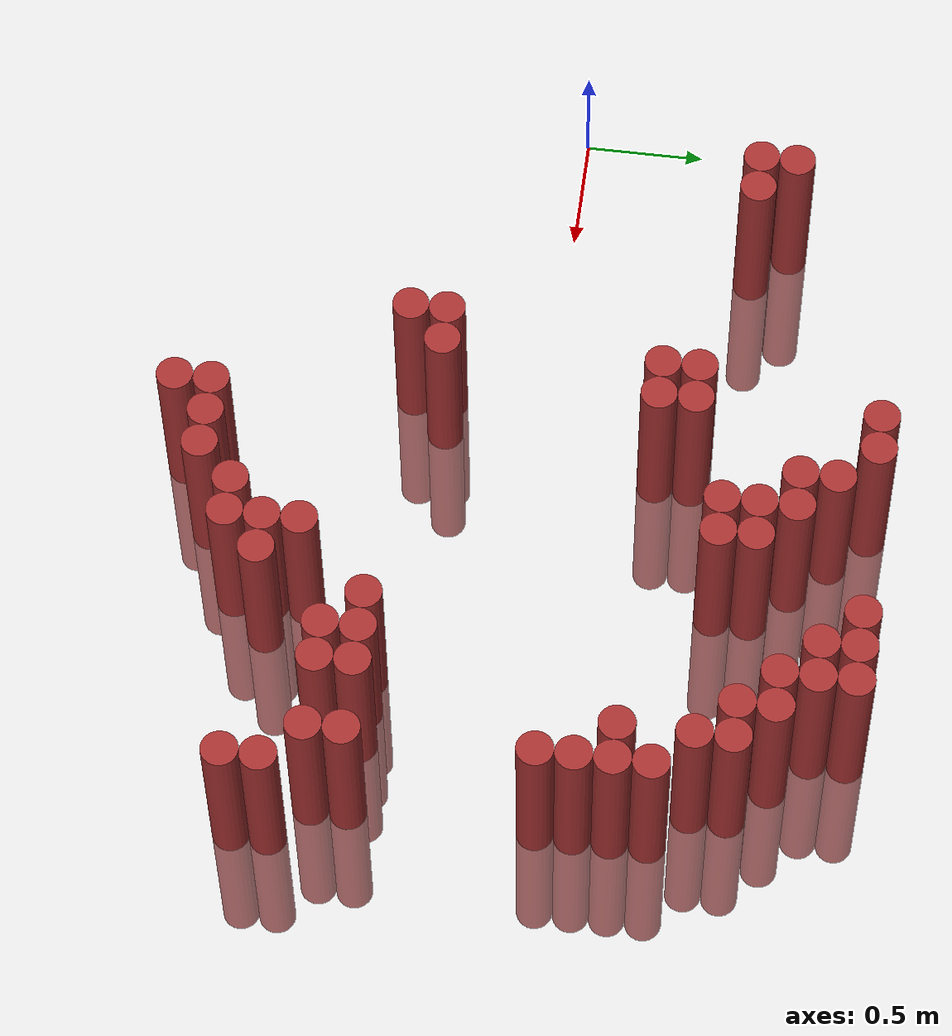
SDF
<sdf version="1.6">
 <world name="default">
  <model name="ground_plane">
   <static>1</static>
   <link name="link">
    <collision name="collision">
     <geometry><plane><normal>0 0 1</normal><size>100 100</size></plane></geometry>
     <surface><friction><ode><mu>100</mu><mu2>50</mu2></ode></friction></surface>
    </collision>
    <visual name="visual">
     <cast_shadows>0</cast_shadows>
     <geometry><plane><normal>0 0 1</normal><size>100 100</size></plane></geometry>
     <material>
      <script><uri>file://media/materials/scripts/gazebo.material</uri><name>Gazebo/Grey</name></script>
     </material>
    </visual>
   </link>
  </model>
  <model name="unit_cylinder_399">
   <static>1</static>
   <pose>0.475000 0.775000 0.000000 0.000000 0.000000 0.000000</pose>
   <link name="link">
    <inertial>
     <mass>1</mass>
     <inertia><ixx>0.145833</ixx><ixy>0</ixy><ixz>0</ixz><iyy>0.145833</iyy><iyz>0</iyz><izz>0.125</izz></inertia>
    </inertial>
    <collision name="collision">
     <geometry><cylinder><radius>0.075000</radius><length>1.5</length></cylinder></geometry>
    </collision>
    <visual name="visual">
     <geometry><cylinder><radius>0.075000</radius><length>1.5</length></cylinder></geometry>
     <material>
      <ambient>0.648000 0.192000 0.192000 1</ambient>
      <diffuse>0.648000 0.192000 0.192000 1</diffuse>
     </material>
     <material>
      <script><name>Gazebo/Grey</name><uri>file://media/materials/scripts/gazebo.material</uri></script>
     </material>
    </visual>
   </link>
  </model>
  <model name="unit_cylinder_400">
   <static>1</static>
   <pose>0.475000 0.925000 0.000000 0.000000 0.000000 0.000000</pose>
   <link name="link">
    <inertial>
     <mass>1</mass>
     <inertia><ixx>0.145833</ixx><ixy>0</ixy><ixz>0</ixz><iyy>0.145833</iyy><iyz>0</iyz><izz>0.125</izz></inertia>
    </inertial>
    <collision name="collision">
     <geometry><cylinder><radius>0.075000</radius><length>1.5</length></cylinder></geometry>
    </collision>
    <visual name="visual">
     <geometry><cylinder><radius>0.075000</radius><length>1.5</length></cylinder></geometry>
     <material>
      <ambient>0.648000 0.192000 0.192000 1</ambient>
      <diffuse>0.648000 0.192000 0.192000 1</diffuse>
     </material>
     <material>
      <script><name>Gazebo/Grey</name><uri>file://media/materials/scripts/gazebo.material</uri></script>
     </material>
    </visual>
   </link>
  </model>
  <model name="unit_cylinder_403">
   <static>1</static>
   <pose>0.625000 0.775000 0.000000 0.000000 0.000000 0.000000</pose>
   <link name="link">
    <inertial>
     <mass>1</mass>
     <inertia><ixx>0.145833</ixx><ixy>0</ixy><ixz>0</ixz><iyy>0.145833</iyy><iyz>0</iyz><izz>0.125</izz></inertia>
    </inertial>
    <collision name="collision">
     <geometry><cylinder><radius>0.075000</radius><length>1.5</length></cylinder></geometry>
    </collision>
    <visual name="visual">
     <geometry><cylinder><radius>0.075000</radius><length>1.5</length></cylinder></geometry>
     <material>
      <ambient>0.648000 0.192000 0.192000 1</ambient>
      <diffuse>0.648000 0.192000 0.192000 1</diffuse>
     </material>
     <material>
      <script><name>Gazebo/Grey</name><uri>file://media/materials/scripts/gazebo.material</uri></script>
     </material>
    </visual>
   </link>
  </model>
  <model name="unit_cylinder_437">
   <static>1</static>
   <pose>1.375000 -0.575000 0.000000 0.000000 0.000000 0.000000</pose>
   <link name="link">
    <inertial>
     <mass>1</mass>
     <inertia><ixx>0.145833</ixx><ixy>0</ixy><ixz>0</ixz><iyy>0.145833</iyy><iyz>0</iyz><izz>0.125</izz></inertia>
    </inertial>
    <collision name="collision">
     <geometry><cylinder><radius>0.075000</radius><length>1.5</length></cylinder></geometry>
    </collision>
    <visual name="visual">
     <geometry><cylinder><radius>0.075000</radius><length>1.5</length></cylinder></geometry>
     <material>
      <ambient>0.648000 0.192000 0.192000 1</ambient>
      <diffuse>0.648000 0.192000 0.192000 1</diffuse>
     </material>
     <material>
      <script><name>Gazebo/Grey</name><uri>file://media/materials/scripts/gazebo.material</uri></script>
     </material>
    </visual>
   </link>
  </model>
  <model name="unit_cylinder_438">
   <static>1</static>
   <pose>1.375000 -0.425000 0.000000 0.000000 0.000000 0.000000</pose>
   <link name="link">
    <inertial>
     <mass>1</mass>
     <inertia><ixx>0.145833</ixx><ixy>0</ixy><ixz>0</ixz><iyy>0.145833</iyy><iyz>0</iyz><izz>0.125</izz></inertia>
    </inertial>
    <collision name="collision">
     <geometry><cylinder><radius>0.075000</radius><length>1.5</length></cylinder></geometry>
    </collision>
    <visual name="visual">
     <geometry><cylinder><radius>0.075000</radius><length>1.5</length></cylinder></geometry>
     <material>
      <ambient>0.648000 0.192000 0.192000 1</ambient>
      <diffuse>0.648000 0.192000 0.192000 1</diffuse>
     </material>
     <material>
      <script><name>Gazebo/Grey</name><uri>file://media/materials/scripts/gazebo.material</uri></script>
     </material>
    </visual>
   </link>
  </model>
  <model name="unit_cylinder_447">
   <static>1</static>
   <pose>1.525000 -0.425000 0.000000 0.000000 0.000000 0.000000</pose>
   <link name="link">
    <inertial>
     <mass>1</mass>
     <inertia><ixx>0.145833</ixx><ixy>0</ixy><ixz>0</ixz><iyy>0.145833</iyy><iyz>0</iyz><izz>0.125</izz></inertia>
    </inertial>
    <collision name="collision">
     <geometry><cylinder><radius>0.075000</radius><length>1.5</length></cylinder></geometry>
    </collision>
    <visual name="visual">
     <geometry><cylinder><radius>0.075000</radius><length>1.5</length></cylinder></geometry>
     <material>
      <ambient>0.648000 0.192000 0.192000 1</ambient>
      <diffuse>0.648000 0.192000 0.192000 1</diffuse>
     </material>
     <material>
      <script><name>Gazebo/Grey</name><uri>file://media/materials/scripts/gazebo.material</uri></script>
     </material>
    </visual>
   </link>
  </model>
  <model name="unit_cylinder_448">
   <static>1</static>
   <pose>1.525000 0.475000 0.000000 0.000000 0.000000 0.000000</pose>
   <link name="link">
    <inertial>
     <mass>1</mass>
     <inertia><ixx>0.145833</ixx><ixy>0</ixy><ixz>0</ixz><iyy>0.145833</iyy><iyz>0</iyz><izz>0.125</izz></inertia>
    </inertial>
    <collision name="collision">
     <geometry><cylinder><radius>0.075000</radius><length>1.5</length></cylinder></geometry>
    </collision>
    <visual name="visual">
     <geometry><cylinder><radius>0.075000</radius><length>1.5</length></cylinder></geometry>
     <material>
      <ambient>0.648000 0.192000 0.192000 1</ambient>
      <diffuse>0.648000 0.192000 0.192000 1</diffuse>
     </material>
     <material>
      <script><name>Gazebo/Grey</name><uri>file://media/materials/scripts/gazebo.material</uri></script>
     </material>
    </visual>
   </link>
  </model>
  <model name="unit_cylinder_449">
   <static>1</static>
   <pose>1.525000 0.625000 0.000000 0.000000 0.000000 0.000000</pose>
   <link name="link">
    <inertial>
     <mass>1</mass>
     <inertia><ixx>0.145833</ixx><ixy>0</ixy><ixz>0</ixz><iyy>0.145833</iyy><iyz>0</iyz><izz>0.125</izz></inertia>
    </inertial>
    <collision name="collision">
     <geometry><cylinder><radius>0.075000</radius><length>1.5</length></cylinder></geometry>
    </collision>
    <visual name="visual">
     <geometry><cylinder><radius>0.075000</radius><length>1.5</length></cylinder></geometry>
     <material>
      <ambient>0.648000 0.192000 0.192000 1</ambient>
      <diffuse>0.648000 0.192000 0.192000 1</diffuse>
     </material>
     <material>
      <script><name>Gazebo/Grey</name><uri>file://media/materials/scripts/gazebo.material</uri></script>
     </material>
    </visual>
   </link>
  </model>
  <model name="unit_cylinder_457">
   <static>1</static>
   <pose>1.675000 0.475000 0.000000 0.000000 0.000000 0.000000</pose>
   <link name="link">
    <inertial>
     <mass>1</mass>
     <inertia><ixx>0.145833</ixx><ixy>0</ixy><ixz>0</ixz><iyy>0.145833</iyy><iyz>0</iyz><izz>0.125</izz></inertia>
    </inertial>
    <collision name="collision">
     <geometry><cylinder><radius>0.075000</radius><length>1.5</length></cylinder></geometry>
    </collision>
    <visual name="visual">
     <geometry><cylinder><radius>0.075000</radius><length>1.5</length></cylinder></geometry>
     <material>
      <ambient>0.648000 0.192000 0.192000 1</ambient>
      <diffuse>0.648000 0.192000 0.192000 1</diffuse>
     </material>
     <material>
      <script><name>Gazebo/Grey</name><uri>file://media/materials/scripts/gazebo.material</uri></script>
     </material>
    </visual>
   </link>
  </model>
  <model name="unit_cylinder_458">
   <static>1</static>
   <pose>1.675000 0.625000 0.000000 0.000000 0.000000 0.000000</pose>
   <link name="link">
    <inertial>
     <mass>1</mass>
     <inertia><ixx>0.145833</ixx><ixy>0</ixy><ixz>0</ixz><iyy>0.145833</iyy><iyz>0</iyz><izz>0.125</izz></inertia>
    </inertial>
    <collision name="collision">
     <geometry><cylinder><radius>0.075000</radius><length>1.5</length></cylinder></geometry>
    </collision>
    <visual name="visual">
     <geometry><cylinder><radius>0.075000</radius><length>1.5</length></cylinder></geometry>
     <material>
      <ambient>0.648000 0.192000 0.192000 1</ambient>
      <diffuse>0.648000 0.192000 0.192000 1</diffuse>
     </material>
     <material>
      <script><name>Gazebo/Grey</name><uri>file://media/materials/scripts/gazebo.material</uri></script>
     </material>
    </visual>
   </link>
  </model>
  <model name="unit_cylinder_459">
   <static>1</static>
   <pose>1.675000 1.375000 0.000000 0.000000 0.000000 0.000000</pose>
   <link name="link">
    <inertial>
     <mass>1</mass>
     <inertia><ixx>0.145833</ixx><ixy>0</ixy><ixz>0</ixz><iyy>0.145833</iyy><iyz>0</iyz><izz>0.125</izz></inertia>
    </inertial>
    <collision name="collision">
     <geometry><cylinder><radius>0.075000</radius><length>1.5</length></cylinder></geometry>
    </collision>
    <visual name="visual">
     <geometry><cylinder><radius>0.075000</radius><length>1.5</length></cylinder></geometry>
     <material>
      <ambient>0.648000 0.192000 0.192000 1</ambient>
      <diffuse>0.648000 0.192000 0.192000 1</diffuse>
     </material>
     <material>
      <script><name>Gazebo/Grey</name><uri>file://media/materials/scripts/gazebo.material</uri></script>
     </material>
    </visual>
   </link>
  </model>
  <model name="unit_cylinder_466">
   <static>1</static>
   <pose>1.825000 -1.475000 0.000000 0.000000 0.000000 0.000000</pose>
   <link name="link">
    <inertial>
     <mass>1</mass>
     <inertia><ixx>0.145833</ixx><ixy>0</ixy><ixz>0</ixz><iyy>0.145833</iyy><iyz>0</iyz><izz>0.125</izz></inertia>
    </inertial>
    <collision name="collision">
     <geometry><cylinder><radius>0.075000</radius><length>1.5</length></cylinder></geometry>
    </collision>
    <visual name="visual">
     <geometry><cylinder><radius>0.075000</radius><length>1.5</length></cylinder></geometry>
     <material>
      <ambient>0.648000 0.192000 0.192000 1</ambient>
      <diffuse>0.648000 0.192000 0.192000 1</diffuse>
     </material>
     <material>
      <script><name>Gazebo/Grey</name><uri>file://media/materials/scripts/gazebo.material</uri></script>
     </material>
    </visual>
   </link>
  </model>
  <model name="unit_cylinder_467">
   <static>1</static>
   <pose>1.825000 -1.325000 0.000000 0.000000 0.000000 0.000000</pose>
   <link name="link">
    <inertial>
     <mass>1</mass>
     <inertia><ixx>0.145833</ixx><ixy>0</ixy><ixz>0</ixz><iyy>0.145833</iyy><iyz>0</iyz><izz>0.125</izz></inertia>
    </inertial>
    <collision name="collision">
     <geometry><cylinder><radius>0.075000</radius><length>1.5</length></cylinder></geometry>
    </collision>
    <visual name="visual">
     <geometry><cylinder><radius>0.075000</radius><length>1.5</length></cylinder></geometry>
     <material>
      <ambient>0.648000 0.192000 0.192000 1</ambient>
      <diffuse>0.648000 0.192000 0.192000 1</diffuse>
     </material>
     <material>
      <script><name>Gazebo/Grey</name><uri>file://media/materials/scripts/gazebo.material</uri></script>
     </material>
    </visual>
   </link>
  </model>
  <model name="unit_cylinder_468">
   <static>1</static>
   <pose>1.825000 1.375000 0.000000 0.000000 0.000000 0.000000</pose>
   <link name="link">
    <inertial>
     <mass>1</mass>
     <inertia><ixx>0.145833</ixx><ixy>0</ixy><ixz>0</ixz><iyy>0.145833</iyy><iyz>0</iyz><izz>0.125</izz></inertia>
    </inertial>
    <collision name="collision">
     <geometry><cylinder><radius>0.075000</radius><length>1.5</length></cylinder></geometry>
    </collision>
    <visual name="visual">
     <geometry><cylinder><radius>0.075000</radius><length>1.5</length></cylinder></geometry>
     <material>
      <ambient>0.648000 0.192000 0.192000 1</ambient>
      <diffuse>0.648000 0.192000 0.192000 1</diffuse>
     </material>
     <material>
      <script><name>Gazebo/Grey</name><uri>file://media/materials/scripts/gazebo.material</uri></script>
     </material>
    </visual>
   </link>
  </model>
  <model name="unit_cylinder_471">
   <static>1</static>
   <pose>1.975000 -1.325000 0.000000 0.000000 0.000000 0.000000</pose>
   <link name="link">
    <inertial>
     <mass>1</mass>
     <inertia><ixx>0.145833</ixx><ixy>0</ixy><ixz>0</ixz><iyy>0.145833</iyy><iyz>0</iyz><izz>0.125</izz></inertia>
    </inertial>
    <collision name="collision">
     <geometry><cylinder><radius>0.075000</radius><length>1.5</length></cylinder></geometry>
    </collision>
    <visual name="visual">
     <geometry><cylinder><radius>0.075000</radius><length>1.5</length></cylinder></geometry>
     <material>
      <ambient>0.648000 0.192000 0.192000 1</ambient>
      <diffuse>0.648000 0.192000 0.192000 1</diffuse>
     </material>
     <material>
      <script><name>Gazebo/Grey</name><uri>file://media/materials/scripts/gazebo.material</uri></script>
     </material>
    </visual>
   </link>
  </model>
  <model name="unit_cylinder_472">
   <static>1</static>
   <pose>1.975000 1.075000 0.000000 0.000000 0.000000 0.000000</pose>
   <link name="link">
    <inertial>
     <mass>1</mass>
     <inertia><ixx>0.145833</ixx><ixy>0</ixy><ixz>0</ixz><iyy>0.145833</iyy><iyz>0</iyz><izz>0.125</izz></inertia>
    </inertial>
    <collision name="collision">
     <geometry><cylinder><radius>0.075000</radius><length>1.5</length></cylinder></geometry>
    </collision>
    <visual name="visual">
     <geometry><cylinder><radius>0.075000</radius><length>1.5</length></cylinder></geometry>
     <material>
      <ambient>0.648000 0.192000 0.192000 1</ambient>
      <diffuse>0.648000 0.192000 0.192000 1</diffuse>
     </material>
     <material>
      <script><name>Gazebo/Grey</name><uri>file://media/materials/scripts/gazebo.material</uri></script>
     </material>
    </visual>
   </link>
  </model>
  <model name="unit_cylinder_473">
   <static>1</static>
   <pose>1.975000 1.225000 0.000000 0.000000 0.000000 0.000000</pose>
   <link name="link">
    <inertial>
     <mass>1</mass>
     <inertia><ixx>0.145833</ixx><ixy>0</ixy><ixz>0</ixz><iyy>0.145833</iyy><iyz>0</iyz><izz>0.125</izz></inertia>
    </inertial>
    <collision name="collision">
     <geometry><cylinder><radius>0.075000</radius><length>1.5</length></cylinder></geometry>
    </collision>
    <visual name="visual">
     <geometry><cylinder><radius>0.075000</radius><length>1.5</length></cylinder></geometry>
     <material>
      <ambient>0.648000 0.192000 0.192000 1</ambient>
      <diffuse>0.648000 0.192000 0.192000 1</diffuse>
     </material>
     <material>
      <script><name>Gazebo/Grey</name><uri>file://media/materials/scripts/gazebo.material</uri></script>
     </material>
    </visual>
   </link>
  </model>
  <model name="unit_cylinder_477">
   <static>1</static>
   <pose>2.125000 -1.325000 0.000000 0.000000 0.000000 0.000000</pose>
   <link name="link">
    <inertial>
     <mass>1</mass>
     <inertia><ixx>0.145833</ixx><ixy>0</ixy><ixz>0</ixz><iyy>0.145833</iyy><iyz>0</iyz><izz>0.125</izz></inertia>
    </inertial>
    <collision name="collision">
     <geometry><cylinder><radius>0.075000</radius><length>1.5</length></cylinder></geometry>
    </collision>
    <visual name="visual">
     <geometry><cylinder><radius>0.075000</radius><length>1.5</length></cylinder></geometry>
     <material>
      <ambient>0.648000 0.192000 0.192000 1</ambient>
      <diffuse>0.648000 0.192000 0.192000 1</diffuse>
     </material>
     <material>
      <script><name>Gazebo/Grey</name><uri>file://media/materials/scripts/gazebo.material</uri></script>
     </material>
    </visual>
   </link>
  </model>
  <model name="unit_cylinder_478">
   <static>1</static>
   <pose>2.125000 0.775000 0.000000 0.000000 0.000000 0.000000</pose>
   <link name="link">
    <inertial>
     <mass>1</mass>
     <inertia><ixx>0.145833</ixx><ixy>0</ixy><ixz>0</ixz><iyy>0.145833</iyy><iyz>0</iyz><izz>0.125</izz></inertia>
    </inertial>
    <collision name="collision">
     <geometry><cylinder><radius>0.075000</radius><length>1.5</length></cylinder></geometry>
    </collision>
    <visual name="visual">
     <geometry><cylinder><radius>0.075000</radius><length>1.5</length></cylinder></geometry>
     <material>
      <ambient>0.648000 0.192000 0.192000 1</ambient>
      <diffuse>0.648000 0.192000 0.192000 1</diffuse>
     </material>
     <material>
      <script><name>Gazebo/Grey</name><uri>file://media/materials/scripts/gazebo.material</uri></script>
     </material>
    </visual>
   </link>
  </model>
  <model name="unit_cylinder_479">
   <static>1</static>
   <pose>2.125000 0.925000 0.000000 0.000000 0.000000 0.000000</pose>
   <link name="link">
    <inertial>
     <mass>1</mass>
     <inertia><ixx>0.145833</ixx><ixy>0</ixy><ixz>0</ixz><iyy>0.145833</iyy><iyz>0</iyz><izz>0.125</izz></inertia>
    </inertial>
    <collision name="collision">
     <geometry><cylinder><radius>0.075000</radius><length>1.5</length></cylinder></geometry>
    </collision>
    <visual name="visual">
     <geometry><cylinder><radius>0.075000</radius><length>1.5</length></cylinder></geometry>
     <material>
      <ambient>0.648000 0.192000 0.192000 1</ambient>
      <diffuse>0.648000 0.192000 0.192000 1</diffuse>
     </material>
     <material>
      <script><name>Gazebo/Grey</name><uri>file://media/materials/scripts/gazebo.material</uri></script>
     </material>
    </visual>
   </link>
  </model>
  <model name="unit_cylinder_480">
   <static>1</static>
   <pose>2.125000 1.075000 0.000000 0.000000 0.000000 0.000000</pose>
   <link name="link">
    <inertial>
     <mass>1</mass>
     <inertia><ixx>0.145833</ixx><ixy>0</ixy><ixz>0</ixz><iyy>0.145833</iyy><iyz>0</iyz><izz>0.125</izz></inertia>
    </inertial>
    <collision name="collision">
     <geometry><cylinder><radius>0.075000</radius><length>1.5</length></cylinder></geometry>
    </collision>
    <visual name="visual">
     <geometry><cylinder><radius>0.075000</radius><length>1.5</length></cylinder></geometry>
     <material>
      <ambient>0.648000 0.192000 0.192000 1</ambient>
      <diffuse>0.648000 0.192000 0.192000 1</diffuse>
     </material>
     <material>
      <script><name>Gazebo/Grey</name><uri>file://media/materials/scripts/gazebo.material</uri></script>
     </material>
    </visual>
   </link>
  </model>
  <model name="unit_cylinder_487">
   <static>1</static>
   <pose>2.275000 -1.175000 0.000000 0.000000 0.000000 0.000000</pose>
   <link name="link">
    <inertial>
     <mass>1</mass>
     <inertia><ixx>0.145833</ixx><ixy>0</ixy><ixz>0</ixz><iyy>0.145833</iyy><iyz>0</iyz><izz>0.125</izz></inertia>
    </inertial>
    <collision name="collision">
     <geometry><cylinder><radius>0.075000</radius><length>1.5</length></cylinder></geometry>
    </collision>
    <visual name="visual">
     <geometry><cylinder><radius>0.075000</radius><length>1.5</length></cylinder></geometry>
     <material>
      <ambient>0.648000 0.192000 0.192000 1</ambient>
      <diffuse>0.648000 0.192000 0.192000 1</diffuse>
     </material>
     <material>
      <script><name>Gazebo/Grey</name><uri>file://media/materials/scripts/gazebo.material</uri></script>
     </material>
    </visual>
   </link>
  </model>
  <model name="unit_cylinder_488">
   <static>1</static>
   <pose>2.275000 0.775000 0.000000 0.000000 0.000000 0.000000</pose>
   <link name="link">
    <inertial>
     <mass>1</mass>
     <inertia><ixx>0.145833</ixx><ixy>0</ixy><ixz>0</ixz><iyy>0.145833</iyy><iyz>0</iyz><izz>0.125</izz></inertia>
    </inertial>
    <collision name="collision">
     <geometry><cylinder><radius>0.075000</radius><length>1.5</length></cylinder></geometry>
    </collision>
    <visual name="visual">
     <geometry><cylinder><radius>0.075000</radius><length>1.5</length></cylinder></geometry>
     <material>
      <ambient>0.648000 0.192000 0.192000 1</ambient>
      <diffuse>0.648000 0.192000 0.192000 1</diffuse>
     </material>
     <material>
      <script><name>Gazebo/Grey</name><uri>file://media/materials/scripts/gazebo.material</uri></script>
     </material>
    </visual>
   </link>
  </model>
  <model name="unit_cylinder_489">
   <static>1</static>
   <pose>2.275000 0.925000 0.000000 0.000000 0.000000 0.000000</pose>
   <link name="link">
    <inertial>
     <mass>1</mass>
     <inertia><ixx>0.145833</ixx><ixy>0</ixy><ixz>0</ixz><iyy>0.145833</iyy><iyz>0</iyz><izz>0.125</izz></inertia>
    </inertial>
    <collision name="collision">
     <geometry><cylinder><radius>0.075000</radius><length>1.5</length></cylinder></geometry>
    </collision>
    <visual name="visual">
     <geometry><cylinder><radius>0.075000</radius><length>1.5</length></cylinder></geometry>
     <material>
      <ambient>0.648000 0.192000 0.192000 1</ambient>
      <diffuse>0.648000 0.192000 0.192000 1</diffuse>
     </material>
     <material>
      <script><name>Gazebo/Grey</name><uri>file://media/materials/scripts/gazebo.material</uri></script>
     </material>
    </visual>
   </link>
  </model>
  <model name="unit_cylinder_493">
   <static>1</static>
   <pose>2.425000 -1.175000 0.000000 0.000000 0.000000 0.000000</pose>
   <link name="link">
    <inertial>
     <mass>1</mass>
     <inertia><ixx>0.145833</ixx><ixy>0</ixy><ixz>0</ixz><iyy>0.145833</iyy><iyz>0</iyz><izz>0.125</izz></inertia>
    </inertial>
    <collision name="collision">
     <geometry><cylinder><radius>0.075000</radius><length>1.5</length></cylinder></geometry>
    </collision>
    <visual name="visual">
     <geometry><cylinder><radius>0.075000</radius><length>1.5</length></cylinder></geometry>
     <material>
      <ambient>0.648000 0.192000 0.192000 1</ambient>
      <diffuse>0.648000 0.192000 0.192000 1</diffuse>
     </material>
     <material>
      <script><name>Gazebo/Grey</name><uri>file://media/materials/scripts/gazebo.material</uri></script>
     </material>
    </visual>
   </link>
  </model>
  <model name="unit_cylinder_494">
   <static>1</static>
   <pose>2.425000 -1.025000 0.000000 0.000000 0.000000 0.000000</pose>
   <link name="link">
    <inertial>
     <mass>1</mass>
     <inertia><ixx>0.145833</ixx><ixy>0</ixy><ixz>0</ixz><iyy>0.145833</iyy><iyz>0</iyz><izz>0.125</izz></inertia>
    </inertial>
    <collision name="collision">
     <geometry><cylinder><radius>0.075000</radius><length>1.5</length></cylinder></geometry>
    </collision>
    <visual name="visual">
     <geometry><cylinder><radius>0.075000</radius><length>1.5</length></cylinder></geometry>
     <material>
      <ambient>0.648000 0.192000 0.192000 1</ambient>
      <diffuse>0.648000 0.192000 0.192000 1</diffuse>
     </material>
     <material>
      <script><name>Gazebo/Grey</name><uri>file://media/materials/scripts/gazebo.material</uri></script>
     </material>
    </visual>
   </link>
  </model>
  <model name="unit_cylinder_495">
   <static>1</static>
   <pose>2.425000 -0.875000 0.000000 0.000000 0.000000 0.000000</pose>
   <link name="link">
    <inertial>
     <mass>1</mass>
     <inertia><ixx>0.145833</ixx><ixy>0</ixy><ixz>0</ixz><iyy>0.145833</iyy><iyz>0</iyz><izz>0.125</izz></inertia>
    </inertial>
    <collision name="collision">
     <geometry><cylinder><radius>0.075000</radius><length>1.5</length></cylinder></geometry>
    </collision>
    <visual name="visual">
     <geometry><cylinder><radius>0.075000</radius><length>1.5</length></cylinder></geometry>
     <material>
      <ambient>0.648000 0.192000 0.192000 1</ambient>
      <diffuse>0.648000 0.192000 0.192000 1</diffuse>
     </material>
     <material>
      <script><name>Gazebo/Grey</name><uri>file://media/materials/scripts/gazebo.material</uri></script>
     </material>
    </visual>
   </link>
  </model>
  <model name="unit_cylinder_496">
   <static>1</static>
   <pose>2.575000 -1.025000 0.000000 0.000000 0.000000 0.000000</pose>
   <link name="link">
    <inertial>
     <mass>1</mass>
     <inertia><ixx>0.145833</ixx><ixy>0</ixy><ixz>0</ixz><iyy>0.145833</iyy><iyz>0</iyz><izz>0.125</izz></inertia>
    </inertial>
    <collision name="collision">
     <geometry><cylinder><radius>0.075000</radius><length>1.5</length></cylinder></geometry>
    </collision>
    <visual name="visual">
     <geometry><cylinder><radius>0.075000</radius><length>1.5</length></cylinder></geometry>
     <material>
      <ambient>0.648000 0.192000 0.192000 1</ambient>
      <diffuse>0.648000 0.192000 0.192000 1</diffuse>
     </material>
     <material>
      <script><name>Gazebo/Grey</name><uri>file://media/materials/scripts/gazebo.material</uri></script>
     </material>
    </visual>
   </link>
  </model>
  <model name="unit_cylinder_497">
   <static>1</static>
   <pose>2.575000 1.375000 0.000000 0.000000 0.000000 0.000000</pose>
   <link name="link">
    <inertial>
     <mass>1</mass>
     <inertia><ixx>0.145833</ixx><ixy>0</ixy><ixz>0</ixz><iyy>0.145833</iyy><iyz>0</iyz><izz>0.125</izz></inertia>
    </inertial>
    <collision name="collision">
     <geometry><cylinder><radius>0.075000</radius><length>1.5</length></cylinder></geometry>
    </collision>
    <visual name="visual">
     <geometry><cylinder><radius>0.075000</radius><length>1.5</length></cylinder></geometry>
     <material>
      <ambient>0.648000 0.192000 0.192000 1</ambient>
      <diffuse>0.648000 0.192000 0.192000 1</diffuse>
     </material>
     <material>
      <script><name>Gazebo/Grey</name><uri>file://media/materials/scripts/gazebo.material</uri></script>
     </material>
    </visual>
   </link>
  </model>
  <model name="unit_cylinder_502">
   <static>1</static>
   <pose>2.725000 -0.575000 0.000000 0.000000 0.000000 0.000000</pose>
   <link name="link">
    <inertial>
     <mass>1</mass>
     <inertia><ixx>0.145833</ixx><ixy>0</ixy><ixz>0</ixz><iyy>0.145833</iyy><iyz>0</iyz><izz>0.125</izz></inertia>
    </inertial>
    <collision name="collision">
     <geometry><cylinder><radius>0.075000</radius><length>1.5</length></cylinder></geometry>
    </collision>
    <visual name="visual">
     <geometry><cylinder><radius>0.075000</radius><length>1.5</length></cylinder></geometry>
     <material>
      <ambient>0.648000 0.192000 0.192000 1</ambient>
      <diffuse>0.648000 0.192000 0.192000 1</diffuse>
     </material>
     <material>
      <script><name>Gazebo/Grey</name><uri>file://media/materials/scripts/gazebo.material</uri></script>
     </material>
    </visual>
   </link>
  </model>
  <model name="unit_cylinder_503">
   <static>1</static>
   <pose>2.725000 1.225000 0.000000 0.000000 0.000000 0.000000</pose>
   <link name="link">
    <inertial>
     <mass>1</mass>
     <inertia><ixx>0.145833</ixx><ixy>0</ixy><ixz>0</ixz><iyy>0.145833</iyy><iyz>0</iyz><izz>0.125</izz></inertia>
    </inertial>
    <collision name="collision">
     <geometry><cylinder><radius>0.075000</radius><length>1.5</length></cylinder></geometry>
    </collision>
    <visual name="visual">
     <geometry><cylinder><radius>0.075000</radius><length>1.5</length></cylinder></geometry>
     <material>
      <ambient>0.648000 0.192000 0.192000 1</ambient>
      <diffuse>0.648000 0.192000 0.192000 1</diffuse>
     </material>
     <material>
      <script><name>Gazebo/Grey</name><uri>file://media/materials/scripts/gazebo.material</uri></script>
     </material>
    </visual>
   </link>
  </model>
  <model name="unit_cylinder_504">
   <static>1</static>
   <pose>2.725000 1.375000 0.000000 0.000000 0.000000 0.000000</pose>
   <link name="link">
    <inertial>
     <mass>1</mass>
     <inertia><ixx>0.145833</ixx><ixy>0</ixy><ixz>0</ixz><iyy>0.145833</iyy><iyz>0</iyz><izz>0.125</izz></inertia>
    </inertial>
    <collision name="collision">
     <geometry><cylinder><radius>0.075000</radius><length>1.5</length></cylinder></geometry>
    </collision>
    <visual name="visual">
     <geometry><cylinder><radius>0.075000</radius><length>1.5</length></cylinder></geometry>
     <material>
      <ambient>0.648000 0.192000 0.192000 1</ambient>
      <diffuse>0.648000 0.192000 0.192000 1</diffuse>
     </material>
     <material>
      <script><name>Gazebo/Grey</name><uri>file://media/materials/scripts/gazebo.material</uri></script>
     </material>
    </visual>
   </link>
  </model>
  <model name="unit_cylinder_509">
   <static>1</static>
   <pose>2.875000 -0.725000 0.000000 0.000000 0.000000 0.000000</pose>
   <link name="link">
    <inertial>
     <mass>1</mass>
     <inertia><ixx>0.145833</ixx><ixy>0</ixy><ixz>0</ixz><iyy>0.145833</iyy><iyz>0</iyz><izz>0.125</izz></inertia>
    </inertial>
    <collision name="collision">
     <geometry><cylinder><radius>0.075000</radius><length>1.5</length></cylinder></geometry>
    </collision>
    <visual name="visual">
     <geometry><cylinder><radius>0.075000</radius><length>1.5</length></cylinder></geometry>
     <material>
      <ambient>0.648000 0.192000 0.192000 1</ambient>
      <diffuse>0.648000 0.192000 0.192000 1</diffuse>
     </material>
     <material>
      <script><name>Gazebo/Grey</name><uri>file://media/materials/scripts/gazebo.material</uri></script>
     </material>
    </visual>
   </link>
  </model>
  <model name="unit_cylinder_510">
   <static>1</static>
   <pose>2.875000 -0.575000 0.000000 0.000000 0.000000 0.000000</pose>
   <link name="link">
    <inertial>
     <mass>1</mass>
     <inertia><ixx>0.145833</ixx><ixy>0</ixy><ixz>0</ixz><iyy>0.145833</iyy><iyz>0</iyz><izz>0.125</izz></inertia>
    </inertial>
    <collision name="collision">
     <geometry><cylinder><radius>0.075000</radius><length>1.5</length></cylinder></geometry>
    </collision>
    <visual name="visual">
     <geometry><cylinder><radius>0.075000</radius><length>1.5</length></cylinder></geometry>
     <material>
      <ambient>0.648000 0.192000 0.192000 1</ambient>
      <diffuse>0.648000 0.192000 0.192000 1</diffuse>
     </material>
     <material>
      <script><name>Gazebo/Grey</name><uri>file://media/materials/scripts/gazebo.material</uri></script>
     </material>
    </visual>
   </link>
  </model>
  <model name="unit_cylinder_511">
   <static>1</static>
   <pose>2.875000 1.075000 0.000000 0.000000 0.000000 0.000000</pose>
   <link name="link">
    <inertial>
     <mass>1</mass>
     <inertia><ixx>0.145833</ixx><ixy>0</ixy><ixz>0</ixz><iyy>0.145833</iyy><iyz>0</iyz><izz>0.125</izz></inertia>
    </inertial>
    <collision name="collision">
     <geometry><cylinder><radius>0.075000</radius><length>1.5</length></cylinder></geometry>
    </collision>
    <visual name="visual">
     <geometry><cylinder><radius>0.075000</radius><length>1.5</length></cylinder></geometry>
     <material>
      <ambient>0.648000 0.192000 0.192000 1</ambient>
      <diffuse>0.648000 0.192000 0.192000 1</diffuse>
     </material>
     <material>
      <script><name>Gazebo/Grey</name><uri>file://media/materials/scripts/gazebo.material</uri></script>
     </material>
    </visual>
   </link>
  </model>
  <model name="unit_cylinder_512">
   <static>1</static>
   <pose>2.875000 1.225000 0.000000 0.000000 0.000000 0.000000</pose>
   <link name="link">
    <inertial>
     <mass>1</mass>
     <inertia><ixx>0.145833</ixx><ixy>0</ixy><ixz>0</ixz><iyy>0.145833</iyy><iyz>0</iyz><izz>0.125</izz></inertia>
    </inertial>
    <collision name="collision">
     <geometry><cylinder><radius>0.075000</radius><length>1.5</length></cylinder></geometry>
    </collision>
    <visual name="visual">
     <geometry><cylinder><radius>0.075000</radius><length>1.5</length></cylinder></geometry>
     <material>
      <ambient>0.648000 0.192000 0.192000 1</ambient>
      <diffuse>0.648000 0.192000 0.192000 1</diffuse>
     </material>
     <material>
      <script><name>Gazebo/Grey</name><uri>file://media/materials/scripts/gazebo.material</uri></script>
     </material>
    </visual>
   </link>
  </model>
  <model name="unit_cylinder_513">
   <static>1</static>
   <pose>2.875000 1.375000 0.000000 0.000000 0.000000 0.000000</pose>
   <link name="link">
    <inertial>
     <mass>1</mass>
     <inertia><ixx>0.145833</ixx><ixy>0</ixy><ixz>0</ixz><iyy>0.145833</iyy><iyz>0</iyz><izz>0.125</izz></inertia>
    </inertial>
    <collision name="collision">
     <geometry><cylinder><radius>0.075000</radius><length>1.5</length></cylinder></geometry>
    </collision>
    <visual name="visual">
     <geometry><cylinder><radius>0.075000</radius><length>1.5</length></cylinder></geometry>
     <material>
      <ambient>0.648000 0.192000 0.192000 1</ambient>
      <diffuse>0.648000 0.192000 0.192000 1</diffuse>
     </material>
     <material>
      <script><name>Gazebo/Grey</name><uri>file://media/materials/scripts/gazebo.material</uri></script>
     </material>
    </visual>
   </link>
  </model>
  <model name="unit_cylinder_520">
   <static>1</static>
   <pose>3.025000 -0.725000 0.000000 0.000000 0.000000 0.000000</pose>
   <link name="link">
    <inertial>
     <mass>1</mass>
     <inertia><ixx>0.145833</ixx><ixy>0</ixy><ixz>0</ixz><iyy>0.145833</iyy><iyz>0</iyz><izz>0.125</izz></inertia>
    </inertial>
    <collision name="collision">
     <geometry><cylinder><radius>0.075000</radius><length>1.5</length></cylinder></geometry>
    </collision>
    <visual name="visual">
     <geometry><cylinder><radius>0.075000</radius><length>1.5</length></cylinder></geometry>
     <material>
      <ambient>0.648000 0.192000 0.192000 1</ambient>
      <diffuse>0.648000 0.192000 0.192000 1</diffuse>
     </material>
     <material>
      <script><name>Gazebo/Grey</name><uri>file://media/materials/scripts/gazebo.material</uri></script>
     </material>
    </visual>
   </link>
  </model>
  <model name="unit_cylinder_521">
   <static>1</static>
   <pose>3.025000 -0.575000 0.000000 0.000000 0.000000 0.000000</pose>
   <link name="link">
    <inertial>
     <mass>1</mass>
     <inertia><ixx>0.145833</ixx><ixy>0</ixy><ixz>0</ixz><iyy>0.145833</iyy><iyz>0</iyz><izz>0.125</izz></inertia>
    </inertial>
    <collision name="collision">
     <geometry><cylinder><radius>0.075000</radius><length>1.5</length></cylinder></geometry>
    </collision>
    <visual name="visual">
     <geometry><cylinder><radius>0.075000</radius><length>1.5</length></cylinder></geometry>
     <material>
      <ambient>0.648000 0.192000 0.192000 1</ambient>
      <diffuse>0.648000 0.192000 0.192000 1</diffuse>
     </material>
     <material>
      <script><name>Gazebo/Grey</name><uri>file://media/materials/scripts/gazebo.material</uri></script>
     </material>
    </visual>
   </link>
  </model>
  <model name="unit_cylinder_522">
   <static>1</static>
   <pose>3.025000 0.925000 0.000000 0.000000 0.000000 0.000000</pose>
   <link name="link">
    <inertial>
     <mass>1</mass>
     <inertia><ixx>0.145833</ixx><ixy>0</ixy><ixz>0</ixz><iyy>0.145833</iyy><iyz>0</iyz><izz>0.125</izz></inertia>
    </inertial>
    <collision name="collision">
     <geometry><cylinder><radius>0.075000</radius><length>1.5</length></cylinder></geometry>
    </collision>
    <visual name="visual">
     <geometry><cylinder><radius>0.075000</radius><length>1.5</length></cylinder></geometry>
     <material>
      <ambient>0.648000 0.192000 0.192000 1</ambient>
      <diffuse>0.648000 0.192000 0.192000 1</diffuse>
     </material>
     <material>
      <script><name>Gazebo/Grey</name><uri>file://media/materials/scripts/gazebo.material</uri></script>
     </material>
    </visual>
   </link>
  </model>
  <model name="unit_cylinder_523">
   <static>1</static>
   <pose>3.025000 1.075000 0.000000 0.000000 0.000000 0.000000</pose>
   <link name="link">
    <inertial>
     <mass>1</mass>
     <inertia><ixx>0.145833</ixx><ixy>0</ixy><ixz>0</ixz><iyy>0.145833</iyy><iyz>0</iyz><izz>0.125</izz></inertia>
    </inertial>
    <collision name="collision">
     <geometry><cylinder><radius>0.075000</radius><length>1.5</length></cylinder></geometry>
    </collision>
    <visual name="visual">
     <geometry><cylinder><radius>0.075000</radius><length>1.5</length></cylinder></geometry>
     <material>
      <ambient>0.648000 0.192000 0.192000 1</ambient>
      <diffuse>0.648000 0.192000 0.192000 1</diffuse>
     </material>
     <material>
      <script><name>Gazebo/Grey</name><uri>file://media/materials/scripts/gazebo.material</uri></script>
     </material>
    </visual>
   </link>
  </model>
  <model name="unit_cylinder_529">
   <static>1</static>
   <pose>3.175000 0.475000 0.000000 0.000000 0.000000 0.000000</pose>
   <link name="link">
    <inertial>
     <mass>1</mass>
     <inertia><ixx>0.145833</ixx><ixy>0</ixy><ixz>0</ixz><iyy>0.145833</iyy><iyz>0</iyz><izz>0.125</izz></inertia>
    </inertial>
    <collision name="collision">
     <geometry><cylinder><radius>0.075000</radius><length>1.5</length></cylinder></geometry>
    </collision>
    <visual name="visual">
     <geometry><cylinder><radius>0.075000</radius><length>1.5</length></cylinder></geometry>
     <material>
      <ambient>0.648000 0.192000 0.192000 1</ambient>
      <diffuse>0.648000 0.192000 0.192000 1</diffuse>
     </material>
     <material>
      <script><name>Gazebo/Grey</name><uri>file://media/materials/scripts/gazebo.material</uri></script>
     </material>
    </visual>
   </link>
  </model>
  <model name="unit_cylinder_530">
   <static>1</static>
   <pose>3.175000 0.775000 0.000000 0.000000 0.000000 0.000000</pose>
   <link name="link">
    <inertial>
     <mass>1</mass>
     <inertia><ixx>0.145833</ixx><ixy>0</ixy><ixz>0</ixz><iyy>0.145833</iyy><iyz>0</iyz><izz>0.125</izz></inertia>
    </inertial>
    <collision name="collision">
     <geometry><cylinder><radius>0.075000</radius><length>1.5</length></cylinder></geometry>
    </collision>
    <visual name="visual">
     <geometry><cylinder><radius>0.075000</radius><length>1.5</length></cylinder></geometry>
     <material>
      <ambient>0.648000 0.192000 0.192000 1</ambient>
      <diffuse>0.648000 0.192000 0.192000 1</diffuse>
     </material>
     <material>
      <script><name>Gazebo/Grey</name><uri>file://media/materials/scripts/gazebo.material</uri></script>
     </material>
    </visual>
   </link>
  </model>
  <model name="unit_cylinder_531">
   <static>1</static>
   <pose>3.175000 0.925000 0.000000 0.000000 0.000000 0.000000</pose>
   <link name="link">
    <inertial>
     <mass>1</mass>
     <inertia><ixx>0.145833</ixx><ixy>0</ixy><ixz>0</ixz><iyy>0.145833</iyy><iyz>0</iyz><izz>0.125</izz></inertia>
    </inertial>
    <collision name="collision">
     <geometry><cylinder><radius>0.075000</radius><length>1.5</length></cylinder></geometry>
    </collision>
    <visual name="visual">
     <geometry><cylinder><radius>0.075000</radius><length>1.5</length></cylinder></geometry>
     <material>
      <ambient>0.648000 0.192000 0.192000 1</ambient>
      <diffuse>0.648000 0.192000 0.192000 1</diffuse>
     </material>
     <material>
      <script><name>Gazebo/Grey</name><uri>file://media/materials/scripts/gazebo.material</uri></script>
     </material>
    </visual>
   </link>
  </model>
  <model name="unit_cylinder_534">
   <static>1</static>
   <pose>3.325000 -0.725000 0.000000 0.000000 0.000000 0.000000</pose>
   <link name="link">
    <inertial>
     <mass>1</mass>
     <inertia><ixx>0.145833</ixx><ixy>0</ixy><ixz>0</ixz><iyy>0.145833</iyy><iyz>0</iyz><izz>0.125</izz></inertia>
    </inertial>
    <collision name="collision">
     <geometry><cylinder><radius>0.075000</radius><length>1.5</length></cylinder></geometry>
    </collision>
    <visual name="visual">
     <geometry><cylinder><radius>0.075000</radius><length>1.5</length></cylinder></geometry>
     <material>
      <ambient>0.648000 0.192000 0.192000 1</ambient>
      <diffuse>0.648000 0.192000 0.192000 1</diffuse>
     </material>
     <material>
      <script><name>Gazebo/Grey</name><uri>file://media/materials/scripts/gazebo.material</uri></script>
     </material>
    </visual>
   </link>
  </model>
  <model name="unit_cylinder_535">
   <static>1</static>
   <pose>3.325000 -0.575000 0.000000 0.000000 0.000000 0.000000</pose>
   <link name="link">
    <inertial>
     <mass>1</mass>
     <inertia><ixx>0.145833</ixx><ixy>0</ixy><ixz>0</ixz><iyy>0.145833</iyy><iyz>0</iyz><izz>0.125</izz></inertia>
    </inertial>
    <collision name="collision">
     <geometry><cylinder><radius>0.075000</radius><length>1.5</length></cylinder></geometry>
    </collision>
    <visual name="visual">
     <geometry><cylinder><radius>0.075000</radius><length>1.5</length></cylinder></geometry>
     <material>
      <ambient>0.648000 0.192000 0.192000 1</ambient>
      <diffuse>0.648000 0.192000 0.192000 1</diffuse>
     </material>
     <material>
      <script><name>Gazebo/Grey</name><uri>file://media/materials/scripts/gazebo.material</uri></script>
     </material>
    </visual>
   </link>
  </model>
  <model name="unit_cylinder_536">
   <static>1</static>
   <pose>3.325000 0.175000 0.000000 0.000000 0.000000 0.000000</pose>
   <link name="link">
    <inertial>
     <mass>1</mass>
     <inertia><ixx>0.145833</ixx><ixy>0</ixy><ixz>0</ixz><iyy>0.145833</iyy><iyz>0</iyz><izz>0.125</izz></inertia>
    </inertial>
    <collision name="collision">
     <geometry><cylinder><radius>0.075000</radius><length>1.5</length></cylinder></geometry>
    </collision>
    <visual name="visual">
     <geometry><cylinder><radius>0.075000</radius><length>1.5</length></cylinder></geometry>
     <material>
      <ambient>0.648000 0.192000 0.192000 1</ambient>
      <diffuse>0.648000 0.192000 0.192000 1</diffuse>
     </material>
     <material>
      <script><name>Gazebo/Grey</name><uri>file://media/materials/scripts/gazebo.material</uri></script>
     </material>
    </visual>
   </link>
  </model>
  <model name="unit_cylinder_537">
   <static>1</static>
   <pose>3.325000 0.325000 0.000000 0.000000 0.000000 0.000000</pose>
   <link name="link">
    <inertial>
     <mass>1</mass>
     <inertia><ixx>0.145833</ixx><ixy>0</ixy><ixz>0</ixz><iyy>0.145833</iyy><iyz>0</iyz><izz>0.125</izz></inertia>
    </inertial>
    <collision name="collision">
     <geometry><cylinder><radius>0.075000</radius><length>1.5</length></cylinder></geometry>
    </collision>
    <visual name="visual">
     <geometry><cylinder><radius>0.075000</radius><length>1.5</length></cylinder></geometry>
     <material>
      <ambient>0.648000 0.192000 0.192000 1</ambient>
      <diffuse>0.648000 0.192000 0.192000 1</diffuse>
     </material>
     <material>
      <script><name>Gazebo/Grey</name><uri>file://media/materials/scripts/gazebo.material</uri></script>
     </material>
    </visual>
   </link>
  </model>
  <model name="unit_cylinder_538">
   <static>1</static>
   <pose>3.325000 0.475000 0.000000 0.000000 0.000000 0.000000</pose>
   <link name="link">
    <inertial>
     <mass>1</mass>
     <inertia><ixx>0.145833</ixx><ixy>0</ixy><ixz>0</ixz><iyy>0.145833</iyy><iyz>0</iyz><izz>0.125</izz></inertia>
    </inertial>
    <collision name="collision">
     <geometry><cylinder><radius>0.075000</radius><length>1.5</length></cylinder></geometry>
    </collision>
    <visual name="visual">
     <geometry><cylinder><radius>0.075000</radius><length>1.5</length></cylinder></geometry>
     <material>
      <ambient>0.648000 0.192000 0.192000 1</ambient>
      <diffuse>0.648000 0.192000 0.192000 1</diffuse>
     </material>
     <material>
      <script><name>Gazebo/Grey</name><uri>file://media/materials/scripts/gazebo.material</uri></script>
     </material>
    </visual>
   </link>
  </model>
  <model name="unit_cylinder_539">
   <static>1</static>
   <pose>3.325000 0.625000 0.000000 0.000000 0.000000 0.000000</pose>
   <link name="link">
    <inertial>
     <mass>1</mass>
     <inertia><ixx>0.145833</ixx><ixy>0</ixy><ixz>0</ixz><iyy>0.145833</iyy><iyz>0</iyz><izz>0.125</izz></inertia>
    </inertial>
    <collision name="collision">
     <geometry><cylinder><radius>0.075000</radius><length>1.5</length></cylinder></geometry>
    </collision>
    <visual name="visual">
     <geometry><cylinder><radius>0.075000</radius><length>1.5</length></cylinder></geometry>
     <material>
      <ambient>0.648000 0.192000 0.192000 1</ambient>
      <diffuse>0.648000 0.192000 0.192000 1</diffuse>
     </material>
     <material>
      <script><name>Gazebo/Grey</name><uri>file://media/materials/scripts/gazebo.material</uri></script>
     </material>
    </visual>
   </link>
  </model>
  <model name="unit_cylinder_542">
   <static>1</static>
   <pose>3.475000 -1.025000 0.000000 0.000000 0.000000 0.000000</pose>
   <link name="link">
    <inertial>
     <mass>1</mass>
     <inertia><ixx>0.145833</ixx><ixy>0</ixy><ixz>0</ixz><iyy>0.145833</iyy><iyz>0</iyz><izz>0.125</izz></inertia>
    </inertial>
    <collision name="collision">
     <geometry><cylinder><radius>0.075000</radius><length>1.5</length></cylinder></geometry>
    </collision>
    <visual name="visual">
     <geometry><cylinder><radius>0.075000</radius><length>1.5</length></cylinder></geometry>
     <material>
      <ambient>0.648000 0.192000 0.192000 1</ambient>
      <diffuse>0.648000 0.192000 0.192000 1</diffuse>
     </material>
     <material>
      <script><name>Gazebo/Grey</name><uri>file://media/materials/scripts/gazebo.material</uri></script>
     </material>
    </visual>
   </link>
  </model>
  <model name="unit_cylinder_543">
   <static>1</static>
   <pose>3.475000 -0.875000 0.000000 0.000000 0.000000 0.000000</pose>
   <link name="link">
    <inertial>
     <mass>1</mass>
     <inertia><ixx>0.145833</ixx><ixy>0</ixy><ixz>0</ixz><iyy>0.145833</iyy><iyz>0</iyz><izz>0.125</izz></inertia>
    </inertial>
    <collision name="collision">
     <geometry><cylinder><radius>0.075000</radius><length>1.5</length></cylinder></geometry>
    </collision>
    <visual name="visual">
     <geometry><cylinder><radius>0.075000</radius><length>1.5</length></cylinder></geometry>
     <material>
      <ambient>0.648000 0.192000 0.192000 1</ambient>
      <diffuse>0.648000 0.192000 0.192000 1</diffuse>
     </material>
     <material>
      <script><name>Gazebo/Grey</name><uri>file://media/materials/scripts/gazebo.material</uri></script>
     </material>
    </visual>
   </link>
  </model>
 </world>
</sdf>
